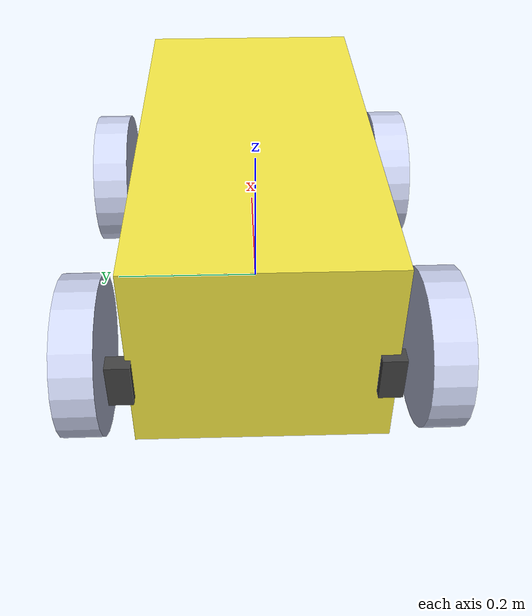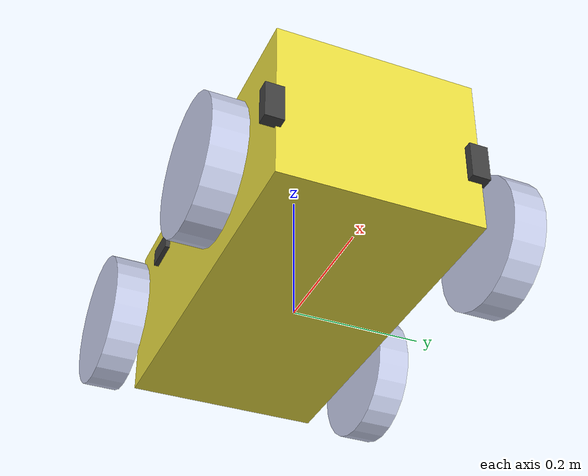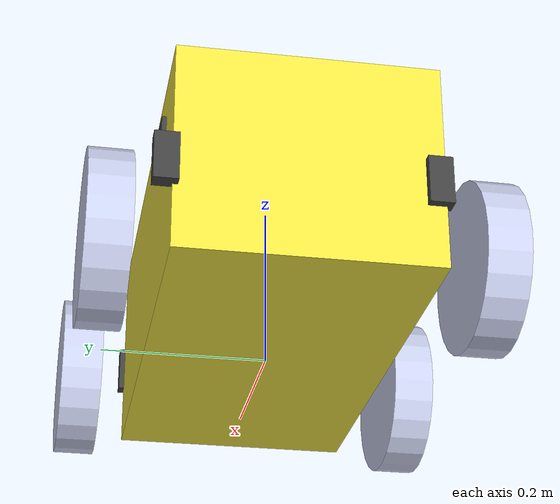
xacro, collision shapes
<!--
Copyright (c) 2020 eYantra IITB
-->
<?xml version="1.0"?>
<robot name="ebot" xmlns:xacro="http://www.ros.org/wiki/xacro">
<xacro:include filename="$(find ebot_nav2)/models/ebot/ebot.gazebo" />

<!-- macros for calculating inertia -->

<xacro:property name="base_mass" value="46.034" />
<xacro:property name="wheel_mass" value="2.637" />

<xacro:macro name="box_inertia" params="b_mass b_x b_y b_z">
        <mass value="${b_mass}"/>
        <inertia  ixx="${b_mass*(b_y*b_y+b_z*b_z)/12}" ixy = "0" ixz = "0"
                  iyy="${b_mass*(b_x*b_x+b_z*b_z)/12}" iyz = "0"
                  izz="${b_mass*(b_x*b_x+b_y*b_y)/12}"/>
</xacro:macro>

<xacro:macro name="cylinder_inertia" params="c_mass r l">
        <mass value="${c_mass}"/>
        <inertia  ixx="${c_mass*(3*r*r+l*l)/12}" ixy = "0" ixz = "0"
                  iyy="${c_mass*(3*r*r+l*l)/12}" iyz = "0"
                  izz="${c_mass*(r*r)/2}" />
</xacro:macro>

<!--   base of the robot -->
  <link name="ebot_base_link">
  </link>

    <!-- BASE LINK -->
    <joint name="base_footprint_joint" type="fixed">
        <parent link="ebot_base_link"/>
        <child link="base_footprint"/>
        <origin xyz="0.0 0.0 0.0" rpy="0.0 0.0 0.0"/>
    </joint>
    <link name="base_footprint">
    </link>

    <joint name="base_link_ebot_base_joint" type="fixed">
        <parent link="ebot_base_link"/>
        <child link="ebot_base"/>
        <origin xyz="0.0 0.0 0.0" rpy="0.0 0.0 0.0"/>
    </joint>

  <link
    name="ebot_base">
    <inertial>
      <origin xyz="0 0.0 0.12" rpy="0 0 0" />
      <xacro:box_inertia b_mass="${base_mass}" b_x="0.585" b_y="0.30" b_z="0.25"/>
    </inertial>
    <visual>
      <origin
        xyz="0 0 0"
        rpy="0 0 0" />
      <geometry>
        <mesh
          filename="file://$(find ebot_nav2)/meshes/chassis.dae" />
      </geometry>
    </visual>
    <collision>
      <origin
          xyz="0 0.0 0.12"
          rpy="0 0 0" />
        <geometry>
          <box size="0.585 0.30 0.25"/>
        </geometry>
    </collision>
  </link>

<!-- wheels -->
<xacro:property name="wheel_inertia">
    <xacro:cylinder_inertia c_mass="${wheel_mass}" r = "0.1" l="0.05"/>   <!--  mass radius length of a wheel -->
</xacro:property>

<!-- front wheel right -->

  <link
    name="FWR">
    <inertial>
      <origin
        xyz="6.6592E-05 0.025016 -1.3483E-06"
        rpy="0 0 0" />
      <xacro:insert_block name="wheel_inertia" />

    </inertial>
    <visual>
      <origin
        xyz="0 0 0"
        rpy="0 0 0" />
      <geometry>
        <mesh
          filename="file://$(find ebot_nav2)/meshes/FWR.STL" />
      </geometry>
      <material
        name="">
        <color
          rgba="0.79216 0.81961 0.93333 1" />
      </material>
    </visual>
    <collision>
      <origin
         xyz="0 0.025 0"
        rpy="1.57 1.57 0" />
      <geometry>
         <cylinder length="0.05" radius="0.1"/>
      </geometry>
    </collision>
  </link>
  <joint
    name="FWRJ"
    type="continuous">
    <origin
      xyz="0.202539503068943 -0.189027702306049 0.0449999999999943"
      rpy="-3.14159265358979 0.911096362238563 0.00679706827343889" />
    <parent
      link="ebot_base" />
    <child
      link="FWR" />
    <axis
      xyz="0 -1 0" />
  </joint>

<!-- front wheel left -->
  <link
    name="FWL">
    <inertial>
      <origin
        xyz="6.6594E-05 0.025016 -1.349E-06"
        rpy="0 0 0" />
           <xacro:insert_block name="wheel_inertia" />
    </inertial>
    <visual>
      <origin
        xyz="0 0 0"
        rpy="0 0 0" />
      <geometry>
        <mesh
          filename="file://$(find ebot_nav2)/meshes/FWL.STL" />
      </geometry>
      <material
        name="">
        <color
          rgba="0.79216 0.81961 0.93333 1" />
      </material>
    </visual>
    <collision>
      <origin
         xyz="0 0.025 0"
        rpy="1.57 1.57 0" />
      <geometry>
         <cylinder length="0.05" radius="0.1"/>
      </geometry>
    </collision>
  </link>
  <joint
    name="FWLJ"
    type="continuous">
    <origin
      xyz="0.199948480594093 0.192163491981716 0.0450000000000047"
      rpy="0 0 0.00679706827344463" />
    <parent
      link="ebot_base" />
    <child
      link="FWL" />
    <axis
      xyz="0 1 0" />
  </joint>

<!--   rear wheel right -->
  <link
    name="RWR">
    <inertial>
      <origin
        xyz="6.6592E-05 0.025016 -1.3483E-06"
        rpy="0 0 0" />
           <xacro:insert_block name="wheel_inertia" />
    </inertial>
    <visual>
      <origin
        xyz="0 0 0"
        rpy="0 0 0" />
      <geometry>
        <mesh
          filename="file://$(find ebot_nav2)/meshes/RWR.STL" />
      </geometry>
      <material
        name="">
        <color
          rgba="0.79216 0.81961 0.93333 1" />
      </material>
    </visual>
   <collision>
      <origin
         xyz="0 0.025 0"
        rpy="1.57 1.57 0" />
      <geometry>
         <cylinder length="0.05" radius="0.1"/>
      </geometry>
    </collision>
  </link>
  <joint
    name="RWRJ"
    type="continuous">
    <origin
      xyz="-0.197451256939211 -0.191746508680447 0.044999999999993"
      rpy="-3.14159265358979 0.544912084409921 0.00679706827344312" />
    <parent
      link="ebot_base" />
    <child
      link="RWR" />
    <axis
      xyz="0 -1 0" />
  </joint>

<!--   rear wheel left -->
  <link
    name="RWL">
    <inertial>
      <origin
        xyz="6.6594E-05 0.025016 -1.349E-06"
        rpy="0 0 0" />
        <xacro:insert_block name="wheel_inertia" />
    </inertial>
    <visual>
      <origin
        xyz="0 0 0"
        rpy="0 0 0" />
      <geometry>
        <mesh
          filename="file://$(find ebot_nav2)/meshes/RWL.STL" />
      </geometry>
      <material
        name="">
        <color
          rgba="0.79216 0.81961 0.93333 1" />
      </material>
    </visual>
   <collision>
      <origin
         xyz="0 0.025 0"
        rpy="1.57 1.57 0" />
      <geometry>
         <cylinder length="0.05" radius="0.1"/>
      </geometry>
    </collision>
  </link>
  <joint
    name="RWLJ"
    type="continuous">
    <origin
      xyz="-0.200042279414009 0.189444685607321 0.0449999999999969"
      rpy="0 0 0.00679706827344463" />
    <parent
      link="ebot_base" />
    <child
      link="RWL" />
    <axis
      xyz="0 1 0" />
  </joint>

<!-- Sensors link -->

<!-- intel real sense -->

  <!-- Intel real sense Camera for 3D mapping-->

<!-- intel real sense front-->

<!-- GPS antenna -->

 <!--  Rear real sense -->

<!-- LIDAR -->
<link name="laser">
    <origin rpy="0 0 0" xyz="0 0 0"/>
    <inertial>
      <mass value="0.09"/>
      <inertia ixx="4.275e-05" ixy="0" ixz="0" iyy="4.275e-05" iyz="0" izz="5.5125e-05"/>
    </inertial>
    <collision>
      <origin rpy="0 0 0" xyz="0 0 0"/>
      <geometry>
        <cylinder length="0.040" radius="0.030"/>
      </geometry>
    </collision>
    <visual>
      <origin rpy="0 0 0" xyz="0 0 0"/>
      <geometry>
        <cylinder length="0.040" radius="0.030"/>
      </geometry>
    </visual>
  </link>

  <joint name="rplidar_joint" type="fixed">
    <axis xyz="0 1 0"/>
    <origin xyz="0.255540836099039 0 0.18"
      rpy="0 0 0.00679706827344463" />

    <parent link="ebot_base"/>
    <child link="laser"/>
    <limit effort="1000" lower="0" upper="6.28" velocity="100"/>
    <axis rpy="0 0 0" xyz="0.02 0 0.178"/>
    <joint_properties damping="5.0" friction="1.0"/>
  </joint>

<!-- front ultrasonic sensor 1-->
  <link
    name="FUS1">
    <inertial>
      <origin
        xyz="-0.00265918092876655 2.08166817117217E-17 0.0100193625139959"
        rpy="0 0 0" />
      <mass
        value="0.0152532066391543" />
      <inertia
        ixx="4.77814992940302E-06"
        ixy="-2.01819824421892E-21"
        ixz="2.64657807499124E-08"
        iyy="1.003384637723E-06"
        iyz="-8.80528876343328E-21"
        izz="4.55679776636487E-06" />
    </inertial>
    <visual>
      <origin
        xyz="0 0 0"
        rpy="0 0 0" />
      <geometry>
        <mesh
          filename="file://$(find ebot_nav2)/meshes/FUS1.STL" />
      </geometry>
      <material
        name="">
        <color
          rgba="0.250980392156863 0.250980392156863 0.250980392156863 1" />
      </material>
    </visual>
    <collision>
      <origin
        xyz="0 0 0"
        rpy="0 0 0" />
      <geometry>
          <box size="0.019 0.057 0.028"/>
      </geometry>
    </collision>
  </link>
  <joint
    name="FUS1J"
    type="fixed">
    <origin
      xyz="0.297825909825268 -0.157279305693451 0.0977263808983278"
      rpy="-1.5707963267949 0 0.00679706827344463" />
    <parent
      link="ebot_base" />
    <child
      link="FUS1" />
    <axis
      xyz="0 0 0" />
  </joint>

<!-- front ultrasonic sensor 2 -->
  <link
    name="FUS2">
    <inertial>
      <origin
        xyz="-0.0026592 1.9949E-17 0.010019"
        rpy="0 0 0" />
      <mass
        value="0.015253" />
      <inertia
        ixx="4.7781E-06"
        ixy="-2.0925E-21"
        ixz="2.6466E-08"
        iyy="1.0034E-06"
        iyz="-9.4695E-21"
        izz="4.5568E-06" />
    </inertial>
    <visual>
      <origin
        xyz="0 0 0"
        rpy="0 0 0" />
      <geometry>
        <mesh
          filename="file://$(find ebot_nav2)/meshes/FUS2.STL" />
      </geometry>
      <material
        name="">
        <color
          rgba="0.25098 0.25098 0.25098 1" />
      </material>
    </visual>
    <collision>
      <origin
        xyz="0 0 0"
        rpy="0 0 0" />
      <geometry>
           <box size="0.019 0.057 0.028"/>
      </geometry>
    </collision>
  </link>
  <joint
    name="FUS2J"
    type="fixed">
    <origin
      xyz="0.295786805044471 0.142713764312663 0.0977263808983286"
      rpy="-1.5707963267949 0 0.00679706827344463" />
    <parent
      link="ebot_base" />
    <child
      link="FUS2" />
    <axis
      xyz="0 0 0" />
  </joint>

<!--   front ultrasonic sensor 3 -->
  <link
    name="FUS3">
    <inertial>
      <origin
        xyz="-0.0026592 5.5511E-17 0.010019"
        rpy="0 0 0" />
      <mass
        value="0.015253" />
      <inertia
        ixx="4.7781E-06"
        ixy="2.7832E-20"
        ixz="2.6466E-08"
        iyy="1.0034E-06"
        iyz="1.4502E-20"
        izz="4.5568E-06" />
    </inertial>
    <visual>
      <origin
        xyz="0 0 0"
        rpy="0 0 0" />
      <geometry>
        <mesh
          filename="file://$(find ebot_nav2)/meshes/FUS3.STL" />
      </geometry>
      <material
        name="">
        <color
          rgba="0.25098 0.25098 0.25098 1" />
      </material>
    </visual>
    <collision>
      <origin
        xyz="0 0 0"
        rpy="0 0 0" />
      <geometry>
           <box size="0.019 0.057 0.028"/>
      </geometry>
    </collision>
  </link>
  <joint
    name="FUS3J"
    type="fixed">
    <origin
      xyz="0.27274874909921 -0.0749478536996718 0.0424745013517897"
      rpy="0 0.785398163397449 0.00679706827344116" />
    <parent
      link="ebot_base" />
    <child
      link="FUS3" />
    <axis
      xyz="0 0 0" />
  </joint>

<!--   front ultrasonic sensor 4 -->
  <link
    name="FUS4">
    <inertial>
      <origin
        xyz="-0.00265918092876644 6.93889390390723E-17 0.0100193625139959"
        rpy="0 0 0" />
      <mass
        value="0.0152532066391543" />
      <inertia
        ixx="4.77814992940302E-06"
        ixy="2.8163959262392E-20"
        ixz="2.64657807499109E-08"
        iyy="1.003384637723E-06"
        iyz="2.09456577324828E-20"
        izz="4.55679776636487E-06" />
    </inertial>
    <visual>
      <origin
        xyz="0 0 0"
        rpy="0 0 0" />
      <geometry>
        <mesh
          filename="file://$(find ebot_nav2)/meshes/FUS4.STL" />
      </geometry>
      <material
        name="">
        <color
          rgba="0.250980392156863 0.250980392156863 0.250980392156863 1" />
      </material>
    </visual>
    <collision>
      <origin
        xyz="0 0 0"
        rpy="0 0 0" />
      <geometry>
           <box size="0.019 0.057 0.028"/>
      </geometry>
    </collision>
  </link>
  <joint
    name="FUS4J"
    type="fixed">
    <origin
      xyz="0.271702008645067 0.0790485889034664 0.0424745013517894"
      rpy="0 0.785398163397449 0.00679706827344116" />
    <parent
      link="ebot_base" />
    <child
      link="FUS4" />
    <axis
      xyz="0 0 0" />
  </joint>

<!--   Rear ultra sonic sensor 5 -->
  <link
    name="RUS5">
    <inertial>
      <origin
        xyz="-0.0026592 2.6021E-17 0.010019"
        rpy="0 0 0" />
      <mass
        value="0.015253" />
      <inertia
        ixx="4.7781E-06"
        ixy="-1.9723E-21"
        ixz="2.6466E-08"
        iyy="1.0034E-06"
        iyz="-7.7105E-21"
        izz="4.5568E-06" />
    </inertial>
    <visual>
      <origin
        xyz="0 0 0"
        rpy="0 0 0" />
      <geometry>
        <mesh
          filename="file://$(find ebot_nav2)/meshes/RUS5.STL" />
      </geometry>
      <material
        name="">
        <color
          rgba="0.25098 0.25098 0.25098 1" />
      </material>
    </visual>
    <collision>
      <origin
        xyz="0 0 0"
        rpy="0 0 0" />
      <geometry>
           <box size="0.019 0.057 0.028"/>
      </geometry>
    </collision>
  </link>
  <joint
    name="RUS5J"
    type="fixed">
    <origin
      xyz="-0.29532868617037 0.157696288994793 0.0977029437251515"
      rpy="-1.5707963267949 0 -3.13479558531634" />
    <parent
      link="ebot_base" />
    <child
      link="RUS5" />
    <axis
      xyz="0 0 0" />
  </joint>

<!--   Rear ultra sonic sensor 6 -->
  <link
    name="RUS6">
    <inertial>
      <origin
        xyz="-0.00265918092876644 2.34187669256869E-17 0.0100193625139959"
        rpy="0 0 0" />
      <mass
        value="0.0152532066391543" />
      <inertia
        ixx="4.77814992940302E-06"
        ixy="-1.34867897211379E-21"
        ixz="2.64657807499114E-08"
        iyy="1.003384637723E-06"
        iyz="-1.29818552470248E-20"
        izz="4.55679776636487E-06" />
    </inertial>
    <visual>
      <origin
        xyz="0 0 0"
        rpy="0 0 0" />
      <geometry>
        <mesh
          filename="file://$(find ebot_nav2)/meshes/RUS6.STL" />
      </geometry>
      <material
        name="">
        <color
          rgba="0.250980392156863 0.250980392156863 0.250980392156863 1" />
      </material>
    </visual>
    <collision>
      <origin
        xyz="0 0 0"
        rpy="0 0 0" />
      <geometry>
           <box size="0.019 0.057 0.028"/>
      </geometry>
    </collision>
  </link>
  <joint
    name="RUS6J"
    type="fixed">
    <origin
      xyz="-0.293289581389573 -0.14229678101132 0.0977029437251508"
      rpy="-1.5707963267949 0 -3.13479558531634" />
    <parent
      link="ebot_base" />
    <child
      link="RUS6" />
    <axis
      xyz="0 0 0" />
  </joint>

<!--   Right ultra sonic sensor 7 -->
  <link
    name="RHUS7">
    <inertial>
      <origin
        xyz="-0.00265918092876641 1.23570598198341E-12 0.0100193625139959"
        rpy="0 0 0" />
      <mass
        value="0.0152532066391543" />
      <inertia
        ixx="4.77814992940302E-06"
        ixy="3.27217392921119E-18"
        ixz="2.64657807499107E-08"
        iyy="1.003384637723E-06"
        iyz="4.38229124201629E-16"
        izz="4.55679776636487E-06" />
    </inertial>
    <visual>
      <origin
        xyz="0 0 0"
        rpy="0 0 0" />
      <geometry>
        <mesh
          filename="file://$(find ebot_nav2)/meshes/RHUS7.STL" />
      </geometry>
      <material
        name="">
        <color
          rgba="0.250980392156863 0.250980392156863 0.250980392156863 1" />
      </material>
    </visual>
    <collision>
      <origin
        xyz="0 0 0"
        rpy="0 0 0" />
      <geometry>
           <box size="0.019 0.057 0.028"/>
      </geometry>
    </collision>
  </link>
  <joint
    name="RHUS7J"
    type="fixed">
    <origin
      xyz="-0.17860231149778 -0.148017381955971 0.189449821416576"
      rpy="0 0 -1.56399925852145" />
    <parent
      link="ebot_base" />
    <child
      link="RHUS7" />
    <axis
      xyz="0 0 0" />
  </joint>

<!--   Right ultra sonicsensor 9 -->
  <link
    name="RHUS9">
    <inertial>
      <origin
        xyz="-0.0026592 6.9389E-18 0.010019"
        rpy="0 0 0" />
      <mass
        value="0.015253" />
      <inertia
        ixx="4.7781E-06"
        ixy="1.6008E-20"
        ixz="2.6466E-08"
        iyy="1.0034E-06"
        iyz="-1.185E-20"
        izz="4.5568E-06" />
    </inertial>
    <visual>
      <origin
        xyz="0 0 0"
        rpy="0 0 0" />
      <geometry>
        <mesh
          filename="file://$(find ebot_nav2)/meshes/RHUS9.STL" />
      </geometry>
      <material
        name="">
        <color
          rgba="0.25098 0.25098 0.25098 1" />
      </material>
    </visual>
    <collision>
      <origin
        xyz="0 0 0"
        rpy="0 0 0" />
      <geometry>
           <box size="0.019 0.057 0.028"/>
      </geometry>
    </collision>
  </link>
  <joint
    name="RHUS9J"
    type="fixed">
    <origin
      xyz="0.141804076845343 -0.0977216096162414 0.196076309026378"
      rpy="-0.00186883076605492 0.123098458475999 -0.786255211903501" />
    <parent
      link="ebot_base" />
    <child
      link="RHUS9" />
    <axis
      xyz="0 0 0" />
  </joint>

<!--   Left ultra sonic sensor 9 -->
  <link
    name="LHUS9">
    <inertial>
      <origin
        xyz="-0.00265918092876642 -1.2353174039248E-12 0.0100193625139958"
        rpy="0 0 0" />
      <mass
        value="0.0152532066391543" />
      <inertia
        ixx="4.77814992940302E-06"
        ixy="-3.2538981368926E-18"
        ixz="2.64657807499116E-08"
        iyy="1.003384637723E-06"
        iyz="-4.38135627183199E-16"
        izz="4.55679776636487E-06" />
    </inertial>
    <visual>
      <origin
        xyz="0 0 0"
        rpy="0 0 0" />
      <geometry>
        <mesh
          filename="file://$(find ebot_nav2)/meshes/LHUS9.STL" />
      </geometry>
      <material
        name="">
        <color
          rgba="0.250980392156863 0.250980392156863 0.250980392156863 1" />
      </material>
    </visual>
    <collision>
      <origin
        xyz="0 0 0"
        rpy="0 0 0" />
      <geometry>
           <box size="0.019 0.057 0.028"/>
      </geometry>
    </collision>
  </link>
  <joint
    name="LHUS9J"
    type="fixed">
    <origin
      xyz="-0.180600634182961 0.14597582665002 0.189449821416576"
      rpy="0 0 1.57759339506834" />
    <parent
      link="ebot_base" />
    <child
      link="LHUS9" />
    <axis
      xyz="0 0 0" />
  </joint>

<!--   left ultra sonic sensor 10 -->
  <link
    name="LHUS10">
    <inertial>
      <origin
        xyz="-0.0026592 -2.0817E-17 0.010019"
        rpy="0 0 0" />
      <mass
        value="0.015253" />
      <inertia
        ixx="4.7781E-06"
        ixy="1.1539E-20"
        ixz="2.6466E-08"
        iyy="1.0034E-06"
        iyz="-1.2651E-20"
        izz="4.5568E-06" />
    </inertial>
    <visual>
      <origin
        xyz="0 0 0"
        rpy="0 0 0" />
      <geometry>
        <mesh
          filename="file://$(find ebot_nav2)/meshes/LHUS10.STL" />
      </geometry>
      <material
        name="">
        <color
          rgba="0.25098 0.25098 0.25098 1" />
      </material>
    </visual>
    <collision>
      <origin
        xyz="0 0 0"
        rpy="0 0 0" />
      <geometry>
           <box size="0.019 0.057 0.028"/>
      </geometry>
    </collision>
  </link>
  <joint
    name="LHUS10J"
    type="fixed">
    <origin
      xyz="0.14045985551618 0.10004021562239 0.196076309026377"
      rpy="0.00186883076604301 0.123098458475999 0.799849348450393" />
    <parent
      link="ebot_base" />
    <child
      link="LHUS10" />
    <axis
      xyz="0 0 0" />
  </joint>

<!-- IMU -->
  <link name="imu_link">
    <collision>
      <origin xyz="0 0 0" rpy="0 0 0"/>
      <geometry>
        <box size="0.02 0.015 0.008"/>
      </geometry>
    </collision>

    <visual>
      <origin xyz="0 0 0" rpy="0 0 0"/>
    <geometry>
        <box size="0.02 0.015 0.008"/>
      </geometry>
    </visual>

    <inertial>
      <mass value="1e-5" />
      <origin xyz="0 0 0" rpy="0 0 0"/>
      <inertia ixx="0" ixy="0" ixz="0" iyy="0" iyz="0" izz="0" />
    </inertial>
  </link>

  <joint
    name="imujoint"
    type="fixed">
    <origin
      xyz="0 0 0.2"
      rpy="0 0 0" />
    <parent
      link="ebot_base" />
    <child
      link="imu_link" />
    <axis
      xyz="0 0 0" />
  </joint>

  <!-- Camera -->

</robot>

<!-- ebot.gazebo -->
<robot name="ebot"
  xmlns:xacro="http://www.ros.org/wiki/xacro">
  <gazebo reference="ebot_base">
    <sensor name='collision_sensor' type='contact'>
      <contact>
        <collision>ebot_base_fixed_joint_lump__basket_collision_13</collision>
        <collision>ebot_base_fixed_joint_lump__trolley_collision_12</collision>
      </contact>
      <plugin name="collision_sensor" filename="libgazebo_collision_sensor.so">
        <rosDebugLevel>na</rosDebugLevel>
        <topicName>/gazebo/base_collision</topicName>
        <updateRate>10.0</updateRate>
      </plugin>
    </sensor>
  </gazebo>

  <gazebo>
    <plugin name="wheel_drive_controller" filename="libgazebo_ros_diff_drive.so">

      <!-- wheels -->
      <num_wheel_pairs>2</num_wheel_pairs>
      <left_joint>FWLJ</left_joint>
      <left_joint>RWLJ</left_joint>
      <right_joint>FWRJ</right_joint>
      <right_joint>RWRJ</right_joint>

      <!-- kinematics -->
      <wheel_separation>0.4</wheel_separation>
      <wheel_diameter>0.2</wheel_diameter>
      <max_wheel_torque>100.0</max_wheel_torque>
      <max_wheel_acceleration>10.0</max_wheel_acceleration>

      <!-- odometry  -->
      <odometry_source>1</odometry_source>
      <odometry_frame>odom</odometry_frame>
      <robot_base_frame>ebot_base_link</robot_base_frame>

      <!-- topic & re remappings -->
      <ros>
        <namespace>/</namespace>
        <remapping>/cmd_vel:=cmd_vel</remapping>
        <remapping>/odom:=odom</remapping>
      </ros>

      <publish_odom>true</publish_odom>
      <publish_odom_tf>true</publish_odom_tf>
      <publish_wheel_tf>true</publish_wheel_tf>
      <update_rate>100.0</update_rate>
    </plugin>
  </gazebo>

  <gazebo reference="FWL">
    <material>Gazebo/Black</material>
  </gazebo>
    <gazebo reference="FWR">
    <material>Gazebo/Black</material>
  </gazebo>
    <gazebo reference="RWL">
    <material>Gazebo/Black</material>
  </gazebo>
    <gazebo reference="RWR">
    <material>Gazebo/Black</material>
  </gazebo>

  <gazebo reference="trolley">
    <material>Gazebo/Grey</material>
  </gazebo>

   <gazebo reference="laser">
    <material>Gazebo/Black</material>
  </gazebo>

    <gazebo reference="camera_link">
    <material>Gazebo/Black</material>
  </gazebo>

    <gazebo reference="sjcam_link">
    <material>Gazebo/Black</material>
  </gazebo>

	<gazebo reference="tomato_gripper_r">
	    <implicitSpringDamper>1</implicitSpringDamper>
	    <mu1>100000</mu1>
	    <mu2>100000</mu2>
	    <kp>100000000.0</kp>
	    <kd>1.0</kd>
	<maxVel>0.0</maxVel>
	<minDepth>0.001</minDepth>
	</gazebo>

	<gazebo reference="tomato_gripper_l">
	    <implicitSpringDamper>1</implicitSpringDamper>
	    <mu1>100000</mu1>
	    <mu2>100000</mu2>
	    <kp>100000000.0</kp>
	    <kd>1.0</kd>
	<maxVel>0.0</maxVel>
	<minDepth>0.001</minDepth>
	</gazebo>

    <link name="ebot_end_effector">
      <gravity>0</gravity>
      <visual>
        <origin rpy="0 0 0" xyz="0 0 0"/>
        <geometry>
          <box size="0.01 0.01 0.01"/>
        </geometry>
        <material name="transparent">
          <color rgba="0 0 0 0"/>
        </material>
      </visual>
      <inertial>
        <origin rpy="0 0 0" xyz="0.000000 0.000000 0.000000"/>
        <mass value="0.0001"/>
        <inertia ixx="1e-08" ixy="0" ixz="0" iyy="1e-08" iyz="0" izz="1e-08"/>
      </inertial>
    </link>
    <joint name="ebot_end_effector_joint" type="revolute">
      <parent link="ebot_base" />
      <child link="ebot_end_effector" />
      <origin rpy="0 0 0" xyz="-0.45 0.0 0.40" />
      <limit effort="50" velocity="1.0" lower="0" upper="0" />
    </joint>
  <gazebo>
    <plugin name="gazebo_ros_vacuum_gripper" filename="libgazebo_ros_vacuum_gripper.so">
      <robotNamespace>/ebot/vacuum_gripper</robotNamespace>
      <topicName>vacuum_grasp</topicName>
      <link_name>ebot_end_effector</link_name>
        <fixed>moon_surface</fixed>
          <max_distance>1.0</max_distance>
    </plugin>
  </gazebo>

<!-- lidar sensor -->

<!-- using GPU -->

<!-- using CPU 0.05 to 8m -->
    <gazebo reference="laser">
        <sensor name="laser" type="ray">
            <pose> 0 0 0 0 0 0 </pose>
            <visualize>true</visualize>
            <update_rate>40</update_rate>
            <ray>
                <scan>
                    <horizontal>
                        <samples>720</samples>
                        <min_angle>-1.57</min_angle>
                        <max_angle>1.57</max_angle>
                    </horizontal>
                </scan>
                <range>
                    <min>0.2</min>
                    <max>8</max>
                </range>
            </ray>
            <plugin name="laser_controller" filename="libgazebo_ros_ray_sensor.so">
                <ros>
                    <remapping>~/out:=scan</remapping>
                </ros>
                <output_type>sensor_msgs/LaserScan</output_type>
                <frame_name>laser</frame_name>
            </plugin>
        </sensor>
    </gazebo>

<!-- intel realsense1 -->

<!--10  ultrasonic sensor -->

<!-- xacro for ultrasonic sensor using GPU -->

<!-- using CPU -->

<!-- imu -->
  <gazebo reference="imu_link">
    <gravity>true</gravity>
    <sensor name="imu_sensor" type="imu">
      <always_on>true</always_on>
      <update_rate>100</update_rate>
      <visualize>true</visualize>
      <topic>__default_topic__</topic>
      <plugin filename="libgazebo_ros_imu_sensor.so" name="imu_plugin">
        <ros>
          <remapping>~/out:=/imu</remapping>
        </ros>
        <bodyName>imu_link</bodyName>
        <updateRateHZ>10.0</updateRateHZ>
        <gaussianNoise>0.0</gaussianNoise>
        <xyzOffset>0 0 0</xyzOffset>
        <rpyOffset>0 0 0</rpyOffset>
        <frameName>imu_link</frameName>
        <initial_orientation_as_reference>false</initial_orientation_as_reference>
      </plugin>
      <pose>0 0 0 0 0 0</pose>
    </sensor>
  </gazebo>

  <!-- camera -->
  <gazebo reference="sjcam_link">
    <sensor type="camera" name="camera1">
      <update_rate>30.0</update_rate>
      <camera name="head">
        <horizontal_fov>1.3962634</horizontal_fov>
        <image>
          <width>800</width>
          <height>800</height>
          <format>R8G8B8</format>
        </image>
        <clip>
          <near>0.02</near>
          <far>300</far>
        </clip>
        <noise>
          <type>gaussian</type>
          <!-- Noise is sampled independently per pixel on each frame.
               That pixel's noise value is added to each of its color
               channels, which at that point lie in the range [0,1]. -->
          <mean>0.0</mean>
          <stddev>0.007</stddev>
        </noise>
      </camera>
      <plugin name="camera_controller" filename="libgazebo_ros_camera.so">
        <alwaysOn>true</alwaysOn>
        <updateRate>0.0</updateRate>
        <cameraName>ebot/camera1</cameraName>
        <imageTopicName>image_raw</imageTopicName>
        <cameraInfoTopicName>camera_info</cameraInfoTopicName>
        <frameName>camera_link</frameName>
        <hackBaseline>0.07</hackBaseline>
        <distortionK1>0.0</distortionK1>
        <distortionK2>0.0</distortionK2>
        <distortionK3>0.0</distortionK3>
        <distortionT1>0.0</distortionT1>
        <distortionT2>0.0</distortionT2>
      </plugin>
    </sensor>
  </gazebo>

</robot>
